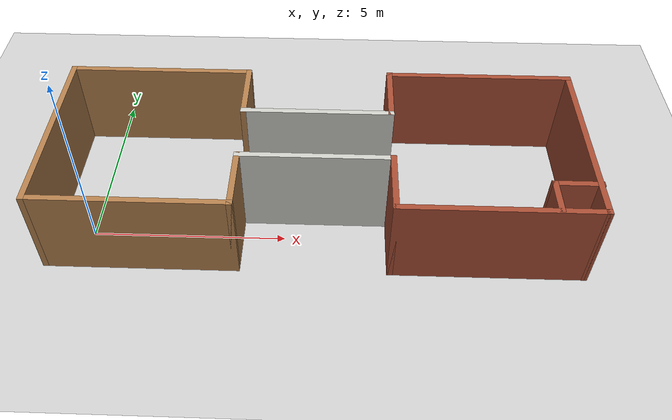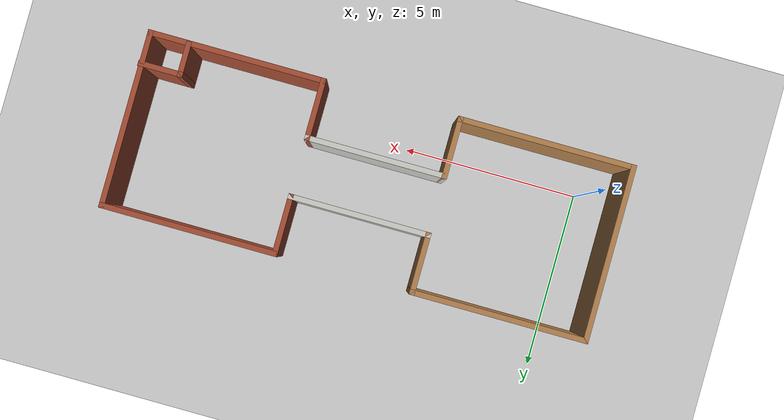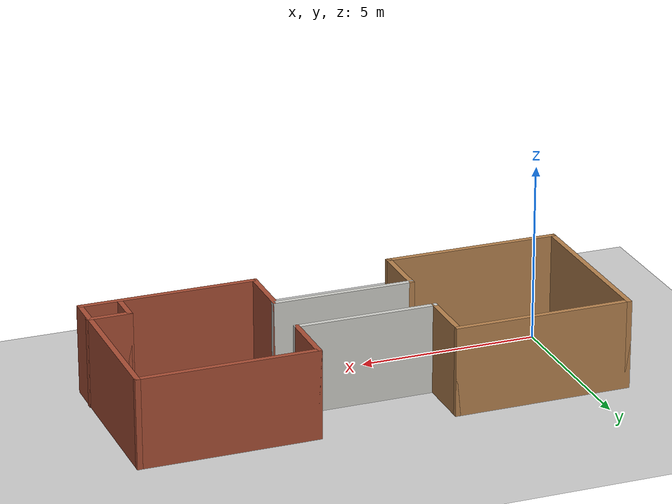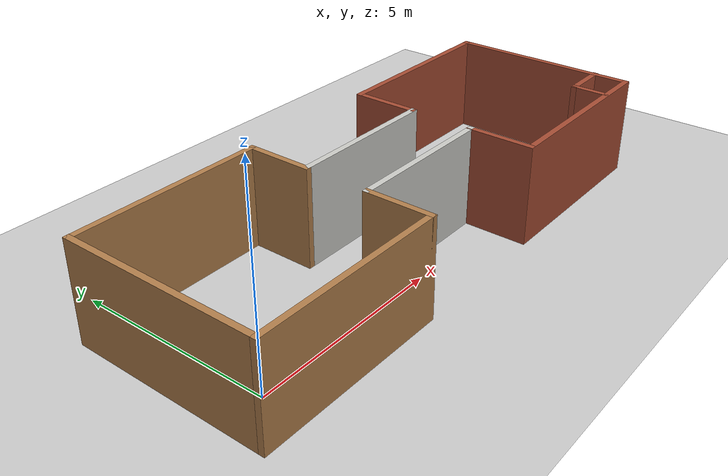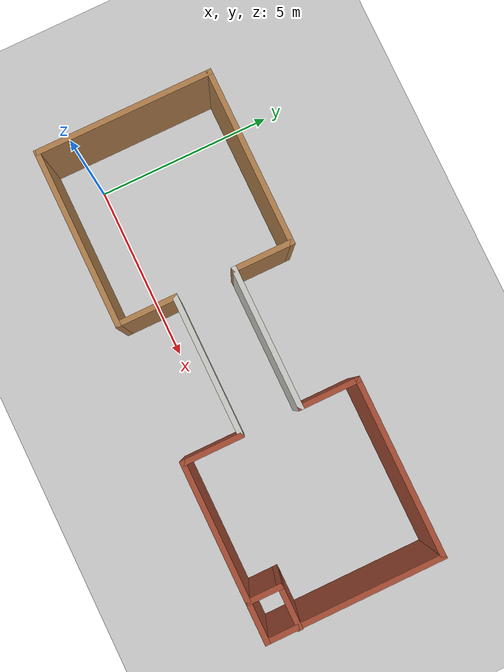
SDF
<sdf version="1.6">
 <world name="default">
  <light name="sun" type="directional">
   <pose>0 0 10 0 -0 0</pose>
   <diffuse>0.8 0.8 0.8 1</diffuse>
   <specular>0.2 0.2 0.2 1</specular>
   <attenuation>
    <range>1000</range>
    <constant>0.9</constant>
    <linear>0.01</linear>
    <quadratic>0.001</quadratic>
   </attenuation>
   <direction>-0.5 0.1 -0.9</direction>
  </light>
  <model name="ground_plane">
   <static>1</static>
   <link name="link">
    <collision name="collision">
     <geometry><plane><normal>0 0 1</normal><size>100 100</size></plane></geometry>
     <surface>
      <contact><collide_bitmask>65535</collide_bitmask></contact>
      <friction><ode><mu>100</mu><mu2>50</mu2></ode></friction>
     </surface>
    </collision>
    <visual name="visual">
     <cast_shadows>0</cast_shadows>
     <geometry><plane><normal>0 0 1</normal><size>100 100</size></plane></geometry>
     <material>
      <script><uri>file://media/materials/scripts/gazebo.material</uri><name>Gazebo/Grey</name></script>
     </material>
    </visual>
   </link>
  </model>
  <gravity>0 0 -9.8</gravity>
  <magnetic_field>6e-06 2.3e-05 -4.2e-05</magnetic_field>
  <atmosphere type="adiabatic"/>
  <physics name="default_physics" default="0" type="ode">
   <max_step_size>0.001</max_step_size>
   <real_time_factor>1</real_time_factor>
   <real_time_update_rate>1000</real_time_update_rate>
  </physics>
  <scene><ambient>0.4 0.4 0.4 1</ambient><background>0.7 0.7 0.7 1</background><shadows>1</shadows></scene>
  <audio><device>default</device></audio>
  <spherical_coordinates>
   <surface_model>EARTH_WGS84</surface_model>
   <latitude_deg>0</latitude_deg>
   <longitude_deg>0</longitude_deg>
   <elevation>0</elevation>
   <heading_deg>0</heading_deg>
  </spherical_coordinates>
  <model name="two_rooms_v3">
   <pose>5.78717 1.415 0 0 -0 0</pose>
   <link name="Wall_0">
    <collision name="Wall_0_Collision">
     <geometry><box><size>5 0.15 2.5</size></box></geometry>
     <pose>0 0 1.25 0 -0 0</pose>
    </collision>
    <visual name="Wall_0_Visual">
     <pose>0 0 1.25 0 -0 0</pose>
     <geometry><box><size>5 0.15 2.5</size></box></geometry>
     <material>
      <script><uri>file://media/materials/scripts/gazebo.material</uri><name>Gazebo/Wood</name></script>
      <ambient>1 1 1 1</ambient>
     </material>
     <meta><layer>0</layer></meta>
    </visual>
    <pose>-4.36217 -2.425 0 0 -0 0</pose>
   </link>
   <link name="Wall_17">
    <collision name="Wall_17_Collision">
     <geometry><box><size>5 0.15 2.5</size></box></geometry>
     <pose>0 0 1.25 0 -0 0</pose>
    </collision>
    <visual name="Wall_17_Visual">
     <pose>0 0 1.25 0 -0 0</pose>
     <geometry><box><size>5 0.15 2.5</size></box></geometry>
     <material>
      <script><uri>file://media/materials/scripts/gazebo.material</uri><name>Gazebo/Bricks</name></script>
      <ambient>1 1 1 1</ambient>
     </material>
     <meta><layer>0</layer></meta>
    </visual>
    <pose>4.33783 -2.425 0 0 -0 0</pose>
   </link>
   <link name="Wall_18">
    <collision name="Wall_18_Collision">
     <geometry><box><size>5 0.15 2.5</size></box></geometry>
     <pose>0 0 1.25 0 -0 0</pose>
    </collision>
    <visual name="Wall_18_Visual">
     <pose>0 0 1.25 0 -0 0</pose>
     <geometry><box><size>5 0.15 2.5</size></box></geometry>
     <material>
      <script><uri>file://media/materials/scripts/gazebo.material</uri><name>Gazebo/Bricks</name></script>
      <ambient>1 1 1 1</ambient>
     </material>
     <meta><layer>0</layer></meta>
    </visual>
    <pose>6.76283 0 0 0 -0 1.5708</pose>
   </link>
   <link name="Wall_19">
    <collision name="Wall_19_Collision">
     <geometry><box><size>5 0.15 2.5</size></box></geometry>
     <pose>0 0 1.25 0 -0 0</pose>
    </collision>
    <visual name="Wall_19_Visual">
     <pose>0 0 1.25 0 -0 0</pose>
     <geometry><box><size>5 0.15 2.5</size></box></geometry>
     <material>
      <script><uri>file://media/materials/scripts/gazebo.material</uri><name>Gazebo/Bricks</name></script>
      <ambient>1 1 1 1</ambient>
     </material>
     <meta><layer>0</layer></meta>
    </visual>
    <pose>4.33783 2.425 0 0 -0 3.14159</pose>
   </link>
   <link name="Wall_2">
    <collision name="Wall_2_Collision">
     <geometry><box><size>5 0.15 2.5</size></box></geometry>
     <pose>0 0 1.25 0 -0 0</pose>
    </collision>
    <visual name="Wall_2_Visual">
     <pose>0 0 1.25 0 -0 0</pose>
     <geometry><box><size>5 0.15 2.5</size></box></geometry>
     <material>
      <script><uri>file://media/materials/scripts/gazebo.material</uri><name>Gazebo/Wood</name></script>
      <ambient>1 1 1 1</ambient>
     </material>
     <meta><layer>0</layer></meta>
    </visual>
    <pose>-6.78717 0 0 0 -0 1.5708</pose>
   </link>
   <link name="Wall_20">
    <collision name="Wall_20_Collision">
     <geometry><box><size>1.75 0.15 2.5</size></box></geometry>
     <pose>0 0 1.25 0 -0 0</pose>
    </collision>
    <visual name="Wall_20_Visual">
     <pose>0 0 1.25 0 -0 0</pose>
     <geometry><box><size>1.75 0.15 2.5</size></box></geometry>
     <material>
      <script><uri>file://media/materials/scripts/gazebo.material</uri><name>Gazebo/Bricks</name></script>
      <ambient>1 1 1 1</ambient>
     </material>
     <meta><layer>0</layer></meta>
    </visual>
    <pose>1.91282 1.625 0 0 -0 -1.5708</pose>
   </link>
   <link name="Wall_21">
    <collision name="Wall_21_Collision">
     <geometry><box><size>4 0.15 2.5</size></box></geometry>
     <pose>0 0 1.25 0 -0 0</pose>
    </collision>
    <visual name="Wall_21_Visual">
     <pose>0 0 1.25 0 -0 0</pose>
     <geometry><box><size>4 0.15 2.5</size></box></geometry>
     <material>
      <script><uri>file://media/materials/scripts/gazebo.material</uri><name>Gazebo/CeilingTiled</name></script>
      <ambient>1 1 1 1</ambient>
     </material>
     <meta><layer>0</layer></meta>
    </visual>
    <pose>-0.012174 0.825 0 0 -0 3.14159</pose>
   </link>
   <link name="Wall_22">
    <collision name="Wall_22_Collision">
     <geometry><box><size>1.75 0.15 2.5</size></box></geometry>
     <pose>0 0 1.25 0 -0 0</pose>
    </collision>
    <visual name="Wall_22_Visual">
     <pose>0 0 1.25 0 -0 0</pose>
     <geometry><box><size>1.75 0.15 2.5</size></box></geometry>
     <material>
      <script><uri>file://media/materials/scripts/gazebo.material</uri><name>Gazebo/Wood</name></script>
      <ambient>1 1 1 1</ambient>
     </material>
     <meta><layer>0</layer></meta>
    </visual>
    <pose>-1.93718 1.625 0 0 -0 1.5708</pose>
   </link>
   <link name="Wall_24">
    <collision name="Wall_24_Collision">
     <geometry><box><size>1 0.15 2.5</size></box></geometry>
     <pose>0 0 1.25 0 -0 0</pose>
    </collision>
    <visual name="Wall_24_Visual">
     <pose>0 0 1.25 0 -0 0</pose>
     <geometry><box><size>1 0.15 2.5</size></box></geometry>
     <material>
      <script><uri>file://media/materials/scripts/gazebo.material</uri><name>Gazebo/Bricks</name></script>
      <ambient>1 1 1 1</ambient>
     </material>
     <meta><layer>0</layer></meta>
    </visual>
    <pose>5.68718 -1.97358 0 0 -0 1.5708</pose>
   </link>
   <link name="Wall_25">
    <collision name="Wall_25_Collision">
     <geometry><box><size>1.25 0.15 2.5</size></box></geometry>
     <pose>0 0 1.25 0 -0 0</pose>
    </collision>
    <visual name="Wall_25_Visual">
     <pose>0 0 1.25 0 -0 0</pose>
     <geometry><box><size>1.25 0.15 2.5</size></box></geometry>
     <material>
      <script><uri>file://media/materials/scripts/gazebo.material</uri><name>Gazebo/Bricks</name></script>
      <ambient>1 1 1 1</ambient>
     </material>
     <meta><layer>0</layer></meta>
    </visual>
    <pose>6.23717 -1.54858 0 0 -0 0</pose>
   </link>
   <link name="Wall_3">
    <collision name="Wall_3_Collision">
     <geometry><box><size>5 0.15 2.5</size></box></geometry>
     <pose>0 0 1.25 0 -0 0</pose>
    </collision>
    <visual name="Wall_3_Visual">
     <pose>0 0 1.25 0 -0 0</pose>
     <geometry><box><size>5 0.15 2.5</size></box></geometry>
     <material>
      <script><uri>file://media/materials/scripts/gazebo.material</uri><name>Gazebo/Wood</name></script>
      <ambient>1 1 1 1</ambient>
     </material>
     <meta><layer>0</layer></meta>
    </visual>
    <pose>-4.36217 2.425 0 0 -0 0</pose>
   </link>
   <link name="Wall_6">
    <collision name="Wall_6_Collision">
     <geometry><box><size>1.75 0.15 2.5</size></box></geometry>
     <pose>0 0 1.25 0 -0 0</pose>
    </collision>
    <visual name="Wall_6_Visual">
     <pose>0 0 1.25 0 -0 0</pose>
     <geometry><box><size>1.75 0.15 2.5</size></box></geometry>
     <material>
      <script><uri>file://media/materials/scripts/gazebo.material</uri><name>Gazebo/Wood</name></script>
      <ambient>1 1 1 1</ambient>
     </material>
     <meta><layer>0</layer></meta>
    </visual>
    <pose>-1.93718 -1.625 0 0 -0 1.5708</pose>
   </link>
   <link name="Wall_7">
    <collision name="Wall_7_Collision">
     <geometry><box><size>4 0.15 2.5</size></box></geometry>
     <pose>0 0 1.25 0 -0 0</pose>
    </collision>
    <visual name="Wall_7_Visual">
     <pose>0 0 1.25 0 -0 0</pose>
     <geometry><box><size>4 0.15 2.5</size></box></geometry>
     <material>
      <script><uri>file://media/materials/scripts/gazebo.material</uri><name>Gazebo/CeilingTiled</name></script>
      <ambient>1 1 1 1</ambient>
     </material>
     <meta><layer>0</layer></meta>
    </visual>
    <pose>-0.012174 -0.825 0 0 -0 0</pose>
   </link>
   <link name="Wall_8">
    <collision name="Wall_8_Collision">
     <geometry><box><size>1.75 0.15 2.5</size></box></geometry>
     <pose>0 0 1.25 0 -0 0</pose>
    </collision>
    <visual name="Wall_8_Visual">
     <pose>0 0 1.25 0 -0 0</pose>
     <geometry><box><size>1.75 0.15 2.5</size></box></geometry>
     <material>
      <script><uri>file://media/materials/scripts/gazebo.material</uri><name>Gazebo/Bricks</name></script>
      <ambient>1 1 1 1</ambient>
     </material>
     <meta><layer>0</layer></meta>
    </visual>
    <pose>1.91282 -1.625 0 0 -0 -1.5708</pose>
   </link>
   <static>1</static>
  </model>
 </world>
</sdf>
